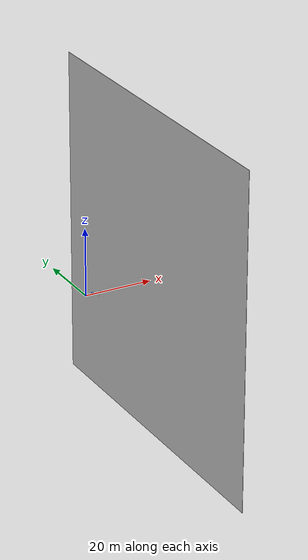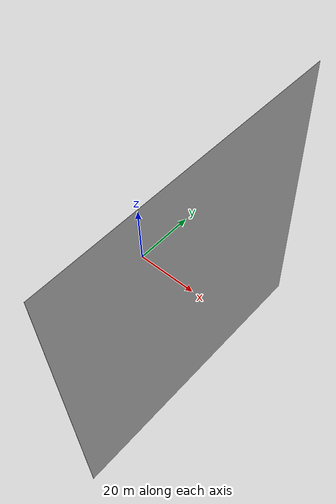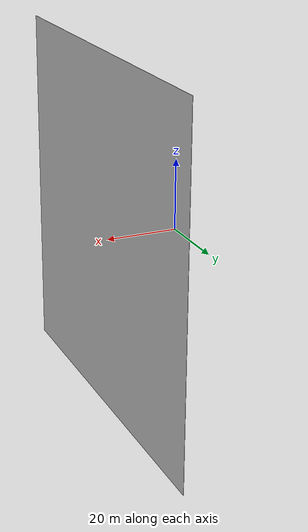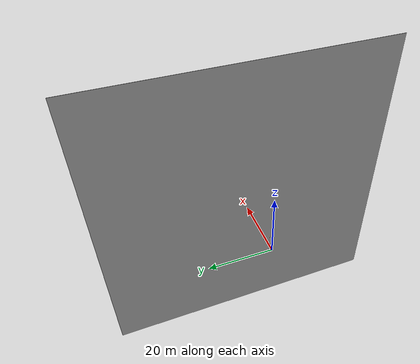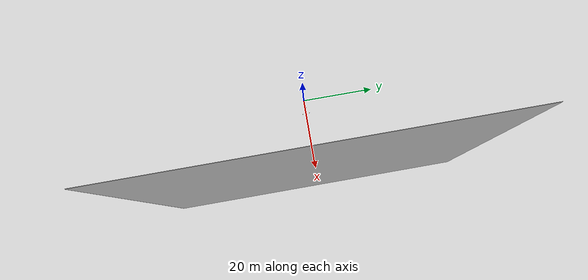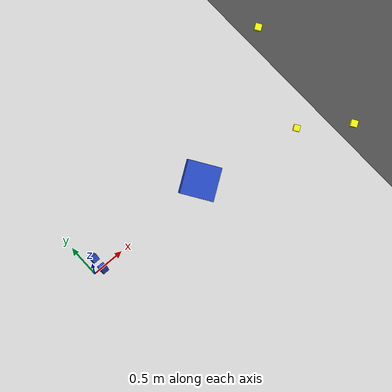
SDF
<?xml version="1.0" ?>
<sdf version="1.6">
  <world name="cube_3m">

    <scene>
      <cast_shadows>true</cast_shadows>
      <shadow_technique>stencil_additive</shadow_technique>
      <grid>false</grid>
      <origin_visual>false</origin_visual>
      <ambient>0.4 0.4 0.4 1</ambient>
      <background>0.1 0.1 0.1 1</background>
    </scene>

    <include>
      <uri>model://sun</uri>
    </include>

    <light name='fill_light' type='directional'>
      <pose>2 2 3 0 0 0</pose>
      <diffuse>0.6 0.8 1.0 1</diffuse>
      <direction>-0.3 -0.3 -0.5</direction>
    </light>

    <light name='main_key_light' type='directional'>
        <pose>3 1 4 0 -0.5 -0.2</pose>
        <diffuse>1 1 1 1</diffuse>
        <specular>1 1 1 1</specular>
        <direction>-0.5 -0.2 -0.8</direction>
        <intensity>1.5</intensity>
    </light>

    <model name="chessboard_plane">
      <pose>21 0 1.25 0 -1.5708 0</pose>
      <static>true</static>
      <link name="link">
        <visual name="visual">
          <geometry>
            <plane>
              <normal>0 0 1</normal>
              <size>100 100</size>
            </plane>
          </geometry>
          <material>
            <script>
              <uri>file:///home/alexey/Documents/projects/2042/github/2042_sensor_testing/catkin_ws/src/scenario_test_pkg/worlds/materials/scripts</uri>
              <uri>file:///home/alexey/Documents/projects/2042/github/2042_sensor_testing/catkin_ws/src/scenario_test_pkg/worlds/materials/textures</uri>
              <name>ChessTexture</name>
            </script>
          </material>
        </visual>
      </link>
    </model>

    <!-- Куб -->
    <model name="cube1">
      <pose>4 0 -1 0.4 1.2 1</pose>
      <static>true</static>
      <link name="link">
        <visual name="visual">
          <geometry>
            <box><size>0.1 0.1 0.1</size></box>
          </geometry>
          <material>
            <ambient>1 1 0 1</ambient>
            <diffuse>1 1 0 1</diffuse>
          </material>
        </visual>
      </link>
    </model>

    <!-- Куб -->
    <model name="cube11">
      <pose>4 1 1 0.4 1.2 1</pose>
      <static>true</static>
      <link name="link">
        <visual name="visual">
          <geometry>
            <box><size>0.1 0.1 0.1</size></box>
          </geometry>
          <material>
            <ambient>1 1 0 1</ambient>
            <diffuse>1 1 0 1</diffuse>
          </material>
        </visual>
      </link>
    </model>

    <!-- Куб -->
    <model name="cube12">
      <pose>4 -1 1 0.4 1.2 1</pose>
      <static>true</static>
      <link name="link">
        <visual name="visual">
          <geometry>
            <box><size>0.1 0.1 0.1</size></box>
          </geometry>
          <material>
            <ambient>1 1 0 1</ambient>
            <diffuse>1 1 0 1</diffuse>
          </material>
        </visual>
      </link>
    </model>

    <!-- Куб -->
    <model name="cube2">
      <pose>2 0 0.25 0.4 1.2 1</pose>
      <static>true</static>
      <link name="link">
        <visual name="visual">
          <geometry>
            <box><size>0.5 0.5 0.5</size></box>
          </geometry>
          <material>
            <script>
              <uri>file:///home/alexey/Documents/projects/2042/github/2042_sensor_testing/catkin_ws/src/scenario_test_pkg/worlds/materials/scripts</uri>
              <uri>file:///home/alexey/Documents/projects/2042/github/2042_sensor_testing/catkin_ws/src/scenario_test_pkg/worlds/materials/textures</uri>
              <name>BlueprintTexture</name>
            </script>
          </material>
        </visual>
      </link>
    </model>

    <!-- Куб -->
    <model name="cube3">
      <pose>0.1 -0.1 0.3 1 0 0</pose>
      <static>true</static>
      <link name="link">
        <visual name="visual">
          <geometry>
            <box><size>0.1 0.1 0.1</size></box>
          </geometry>
          <material>
            <script>
              <uri>file:///home/alexey/Documents/projects/2042/github/2042_sensor_testing/catkin_ws/src/scenario_test_pkg/worlds/materials/scripts</uri>
              <uri>file:///home/alexey/Documents/projects/2042/github/2042_sensor_testing/catkin_ws/src/scenario_test_pkg/worlds/materials/textures</uri>
              <name>BlueprintTexture</name>
            </script>
          </material>
        </visual>
      </link>
    </model>

    <!-- Куб -->
    <model name="cube4">
      <pose>0.1 0.1 0.3 -1 0 0</pose>
      <static>true</static>
      <link name="link">
        <visual name="visual">
          <geometry>
            <box><size>0.1 0.1 0.1</size></box>
          </geometry>
          <material>
            <script>
              <uri>file:///home/alexey/Documents/projects/2042/github/2042_sensor_testing/catkin_ws/src/scenario_test_pkg/worlds/materials/scripts</uri>
              <uri>file:///home/alexey/Documents/projects/2042/github/2042_sensor_testing/catkin_ws/src/scenario_test_pkg/worlds/materials/textures</uri>
              <name>BlueprintTexture</name>
            </script>
          </material>
        </visual>
      </link>
    </model>
  </world>
</sdf>
